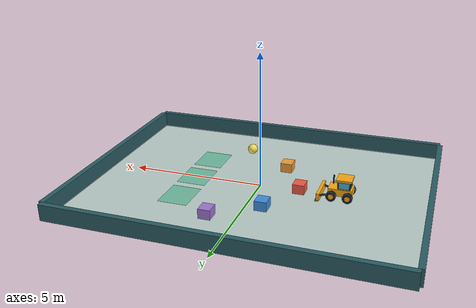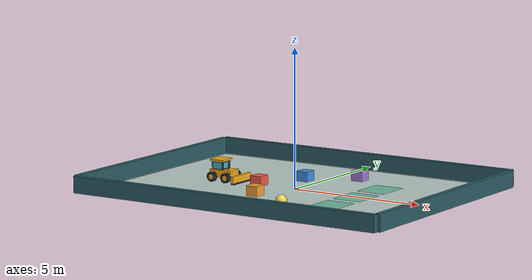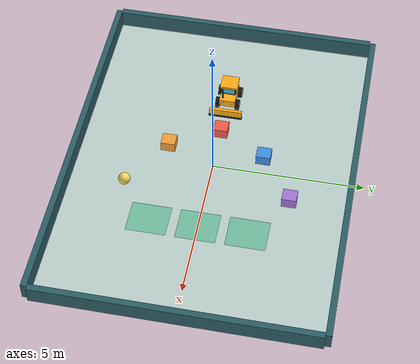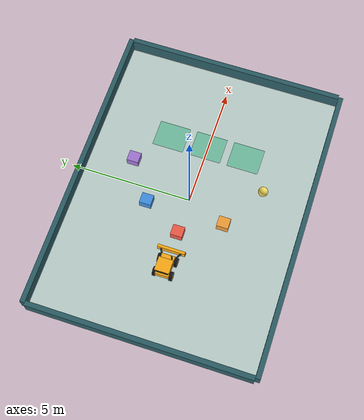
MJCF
<mujoco model="Bulldozer Playground">
  <compiler angle="degree" autolimits="true"/>
  <option timestep="0.005" integrator="implicitfast" cone="elliptic" iterations="60"/>
  <visual><global offwidth="1280" offheight="800"/><quality shadowsize="2048"/><headlight ambient="0.2 0.2 0.2" diffuse="0.4 0.4 0.4"/><map znear="0.01"/></visual>
  <default>
    <geom friction="0.7 0.005 0.0001" solref="0.012 1" solimp="0.95 0.99 0.001"/>
    <joint damping="0.05" armature="0.01"/>
    <default class="decor"><geom contype="0" conaffinity="0" mass="0"/></default>
    <default class="wheel"><joint type="hinge" axis="0 1 0"/><geom type="cylinder" size="0.18 0.065" quat="0.70710678 0.70710678 0 0" rgba="0.075 0.09 0.11 1" mass="0.65" friction="1.0 0.005 0.0001" condim="4"/></default>
  </default>
  <asset>
    <texture name="floor_tex" type="2d" builtin="checker" rgb1="0.72 0.80 0.79" rgb2="0.77 0.84 0.82" width="512" height="512"/>
    <material name="floor" texture="floor_tex" texrepeat="12 9" reflectance="0.05"/>
    <material name="yellow" rgba="1 0.68 0.08 1" specular="0.35" shininess="0.3"/>
    <material name="dark" rgba="0.12 0.17 0.21 1"/>
  </asset>
  <worldbody>
    <light pos="-3 -3 7" dir="0.3 0.3 -1" directional="true" diffuse="0.5 0.5 0.5"/>
    <geom name="floor" type="plane" size="6 4.5 0.1" material="floor"/>
    <geom type="box" pos="0 4.6 0.3" size="6.1 0.1 0.3" rgba="0.17 0.37 0.4 1"/>
    <geom type="box" pos="0 -4.6 0.3" size="6.1 0.1 0.3" rgba="0.17 0.37 0.4 1"/>
    <geom type="box" pos="6.1 0 0.3" size="0.1 4.5 0.3" rgba="0.17 0.37 0.4 1"/>
    <geom type="box" pos="-6.1 0 0.3" size="0.1 4.5 0.3" rgba="0.17 0.37 0.4 1"/>
    <geom class="decor" type="box" pos="2.5 0 0.002" size="0.55 0.65 0.002" rgba="0.3 0.75 0.57 0.6"/>
    <geom class="decor" type="box" pos="2.5 1.6 0.002" size="0.55 0.65 0.002" rgba="0.3 0.75 0.57 0.6"/>
    <geom class="decor" type="box" pos="2.5 -1.6 0.002" size="0.55 0.65 0.002" rgba="0.3 0.75 0.57 0.6"/>
    <body name="dozer" pos="-3 0 0.30">
      <freejoint name="base"/>
      <geom name="chassis" type="box" size="0.43 0.27 0.13" mass="15" material="yellow"/>
      <geom class="decor" type="box" pos="-0.13 0 0.25" size="0.23 0.24 0.19" material="dark"/>
      <geom class="decor" type="box" pos="-0.13 0 0.46" size="0.28 0.29 0.035" material="yellow"/>
      <geom class="decor" type="box" pos="0.106 0 0.28" size="0.005 0.2 0.11" rgba="0.3 0.72 0.8 1"/>
      <geom class="decor" type="box" pos="-0.13 -0.245 0.28" size="0.18 0.005 0.11" rgba="0.3 0.72 0.8 1"/>
      <geom class="decor" type="box" pos="-0.13 0.245 0.28" size="0.18 0.005 0.11" rgba="0.3 0.72 0.8 1"/>
      <geom class="decor" type="cylinder" pos="0.30 -0.17 0.3" size="0.026 0.16" material="dark"/>
      <geom class="decor" type="box" pos="0.42 -0.18 0.06" size="0.015 0.055 0.035" rgba="1 0.97 0.7 1"/>
      <geom class="decor" type="box" pos="0.42 0.18 0.06" size="0.015 0.055 0.035" rgba="1 0.97 0.7 1"/>
      <body name="left_front" pos="0.29 0.34 -0.12"><joint name="lf" class="wheel"/><geom class="wheel"/><geom class="decor" type="cylinder" pos="0 0.068 0" size="0.095 0.007" quat="0.7071 0.7071 0 0" material="yellow"/></body>
      <body name="left_rear" pos="-0.29 0.34 -0.12"><joint name="lr" class="wheel"/><geom class="wheel"/><geom class="decor" type="cylinder" pos="0 0.068 0" size="0.095 0.007" quat="0.7071 0.7071 0 0" material="yellow"/></body>
      <body name="right_front" pos="0.29 -0.34 -0.12"><joint name="rf" class="wheel"/><geom class="wheel"/><geom class="decor" type="cylinder" pos="0 -0.068 0" size="0.095 0.007" quat="0.7071 0.7071 0 0" material="yellow"/></body>
      <body name="right_rear" pos="-0.29 -0.34 -0.12"><joint name="rr" class="wheel"/><geom class="wheel"/><geom class="decor" type="cylinder" pos="0 -0.068 0" size="0.095 0.007" quat="0.7071 0.7071 0 0" material="yellow"/></body>
      <body name="blade" pos="0.72 0 -0.14">
        <joint name="lift" type="slide" axis="0 0 1" range="0 0.5" damping="15"/>
        <geom name="blade_face" type="box" size="0.055 0.56 0.14" mass="1.5" material="yellow"/>
        <geom type="box" pos="0.035 0 -0.125" size="0.06 0.57 0.02" mass="0.2" material="dark"/>
        <geom class="decor" type="capsule" fromto="-0.4 0.22 0.03 -0.06 0.4 0.03" size="0.035" material="dark"/>
        <geom class="decor" type="capsule" fromto="-0.4 -0.22 0.03 -0.06 -0.4 0.03" size="0.035" material="dark"/>
      </body>
    </body>
    <body name="block_1" pos="-1.5 0 0.18"><freejoint/><geom type="box" size="0.22 0.24 0.18" mass="0.7" rgba="0.95 0.36 0.28 1"/></body>
    <body name="block_2" pos="-0.6 1.6 0.18"><freejoint/><geom type="box" size="0.22 0.24 0.18" mass="0.7" rgba="0.25 0.57 0.90 1"/></body>
    <body name="block_3" pos="-0.6 -1.6 0.18"><freejoint/><geom type="box" size="0.22 0.24 0.18" mass="0.7" rgba="0.96 0.63 0.22 1"/></body>
    <body name="block_4" pos="1 2.7 0.18"><freejoint/><geom type="box" size="0.22 0.24 0.18" mass="0.7" rgba="0.64 0.47 0.84 1"/></body>
    <body name="ball" pos="1.2 -2.7 0.20"><freejoint/><geom type="sphere" size="0.20" mass="0.25" rgba="0.97 0.87 0.36 1" friction="0.7 0.015 0.002" condim="6"/></body>
  </worldbody>
  <actuator>
    <velocity name="drive_lf" joint="lf" kv="8" ctrlrange="-8 8" forcerange="-15 15"/>
    <velocity name="drive_lr" joint="lr" kv="8" ctrlrange="-8 8" forcerange="-15 15"/>
    <velocity name="drive_rf" joint="rf" kv="8" ctrlrange="-8 8" forcerange="-15 15"/>
    <velocity name="drive_rr" joint="rr" kv="8" ctrlrange="-8 8" forcerange="-15 15"/>
    <position name="blade_lift" joint="lift" kp="1200" ctrlrange="0 0.5" forcerange="-250 250"/>
  </actuator>
</mujoco>
